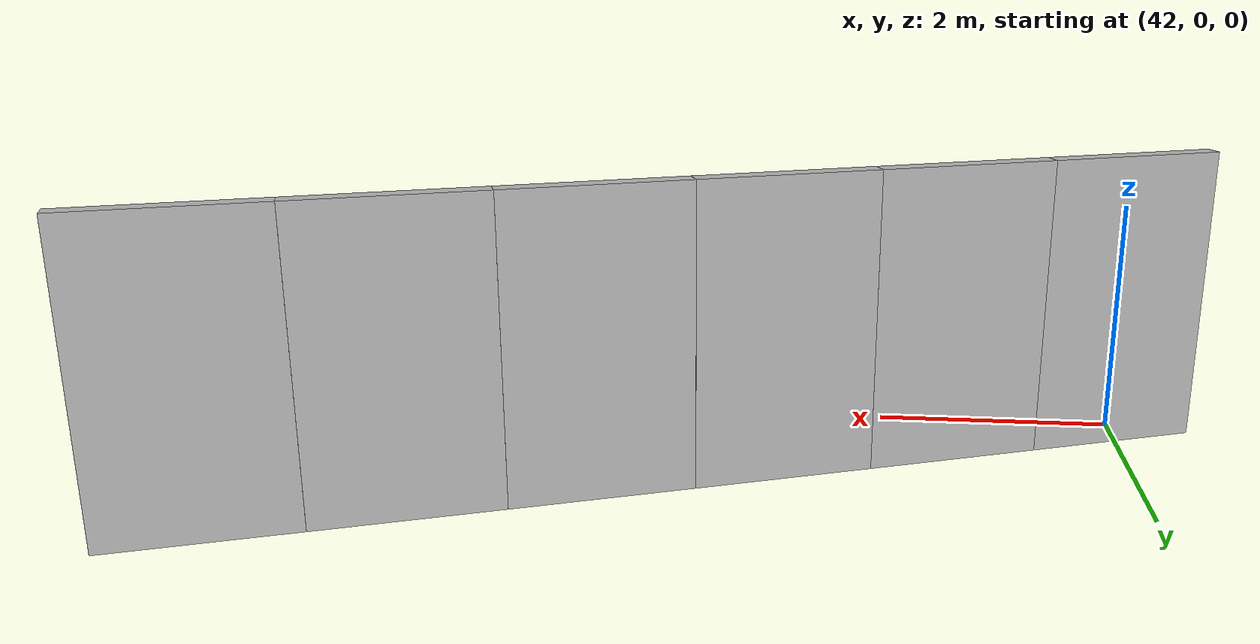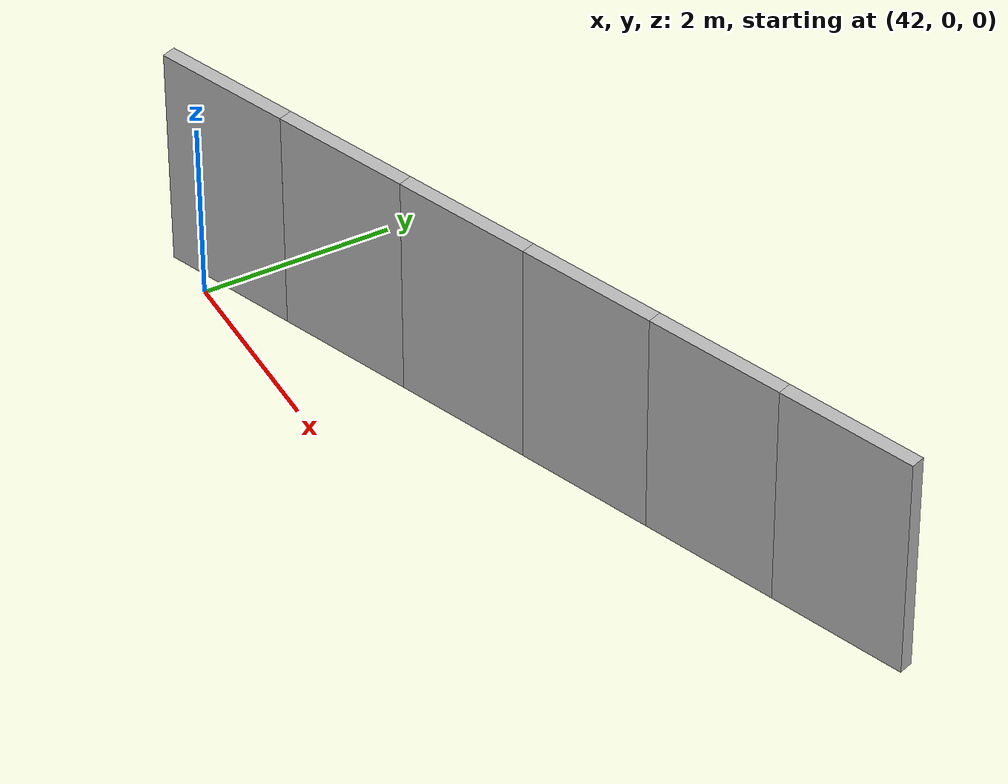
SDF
<?xml version="1.0" ?>
<sdf version="1.6">
  <model name="sps_1646">
    <pose frame="">0 0 0 0 -0 0</pose>
    <static>1</static>
    <self_collide>0</self_collide>
    <allow_auto_disable>0</allow_auto_disable>
    <link name="Wall5701">
      <kinematic>0</kinematic>
      <gravity>1</gravity>
      <self_collide>0</self_collide>
      <collision name="collision">
        <geometry>
          <box>
            <size>1.50309 0.15 2.5</size>
          </box>
        </geometry>
        <pose frame="">0 0 0 0 -0 0</pose>
      </collision>
      <visual name="visual">
        <geometry>
          <box>
            <size>1.50309 0.15 2.5</size>
          </box>
        </geometry>
        <pose frame="">0 0 0 0 -0 0</pose>
        <cast_shadows>1</cast_shadows>
        <transparency>0.0</transparency>
      </visual>
      <pose frame="">49.0749 2.97359 1.25 0 0 -2.78252</pose>
    </link>
    <link name="Wall5702">
      <kinematic>0</kinematic>
      <gravity>1</gravity>
      <self_collide>0</self_collide>
      <collision name="collision">
        <geometry>
          <box>
            <size>1.50317 0.15 2.5</size>
          </box>
        </geometry>
        <pose frame="">0 0 0 0 -0 0</pose>
      </collision>
      <visual name="visual">
        <geometry>
          <box>
            <size>1.50317 0.15 2.5</size>
          </box>
        </geometry>
        <pose frame="">0 0 0 0 -0 0</pose>
        <cast_shadows>1</cast_shadows>
        <transparency>0.0</transparency>
      </visual>
      <pose frame="">47.668 2.44438 1.25 0 0 -2.78111</pose>
    </link>
    <link name="Wall5703">
      <kinematic>0</kinematic>
      <gravity>1</gravity>
      <self_collide>0</self_collide>
      <collision name="collision">
        <geometry>
          <box>
            <size>1.50316 0.15 2.5</size>
          </box>
        </geometry>
        <pose frame="">0 0 0 0 -0 0</pose>
      </collision>
      <visual name="visual">
        <geometry>
          <box>
            <size>1.50316 0.15 2.5</size>
          </box>
        </geometry>
        <pose frame="">0 0 0 0 -0 0</pose>
        <cast_shadows>1</cast_shadows>
        <transparency>0.0</transparency>
      </visual>
      <pose frame="">46.2619 1.91298 1.25 0 0 -2.77941</pose>
    </link>
    <link name="Wall5704">
      <kinematic>0</kinematic>
      <gravity>1</gravity>
      <self_collide>0</self_collide>
      <collision name="collision">
        <geometry>
          <box>
            <size>1.50297 0.15 2.5</size>
          </box>
        </geometry>
        <pose frame="">0 0 0 0 -0 0</pose>
      </collision>
      <visual name="visual">
        <geometry>
          <box>
            <size>1.50297 0.15 2.5</size>
          </box>
        </geometry>
        <pose frame="">0 0 0 0 -0 0</pose>
        <cast_shadows>1</cast_shadows>
        <transparency>0.0</transparency>
      </visual>
      <pose frame="">44.8567 1.37929 1.25 0 0 -2.7778</pose>
    </link>
    <link name="Wall5705">
      <kinematic>0</kinematic>
      <gravity>1</gravity>
      <self_collide>0</self_collide>
      <collision name="collision">
        <geometry>
          <box>
            <size>1.50316 0.15 2.5</size>
          </box>
        </geometry>
        <pose frame="">0 0 0 0 -0 0</pose>
      </collision>
      <visual name="visual">
        <geometry>
          <box>
            <size>1.50316 0.15 2.5</size>
          </box>
        </geometry>
        <pose frame="">0 0 0 0 -0 0</pose>
        <cast_shadows>1</cast_shadows>
        <transparency>0.0</transparency>
      </visual>
      <pose frame="">43.4525 0.843184 1.25 0 0 -2.77598</pose>
    </link>
    <link name="Wall5706">
      <kinematic>0</kinematic>
      <gravity>1</gravity>
      <self_collide>0</self_collide>
      <collision name="collision">
        <geometry>
          <box>
            <size>1.503 0.15 2.5</size>
          </box>
        </geometry>
        <pose frame="">0 0 0 0 -0 0</pose>
      </collision>
      <visual name="visual">
        <geometry>
          <box>
            <size>1.503 0.15 2.5</size>
          </box>
        </geometry>
        <pose frame="">0 0 0 0 -0 0</pose>
        <cast_shadows>1</cast_shadows>
        <transparency>0.0</transparency>
      </visual>
      <pose frame="">42.0492 0.304885 1.25 0 0 -2.77468</pose>
    </link>
  </model>
</sdf>
